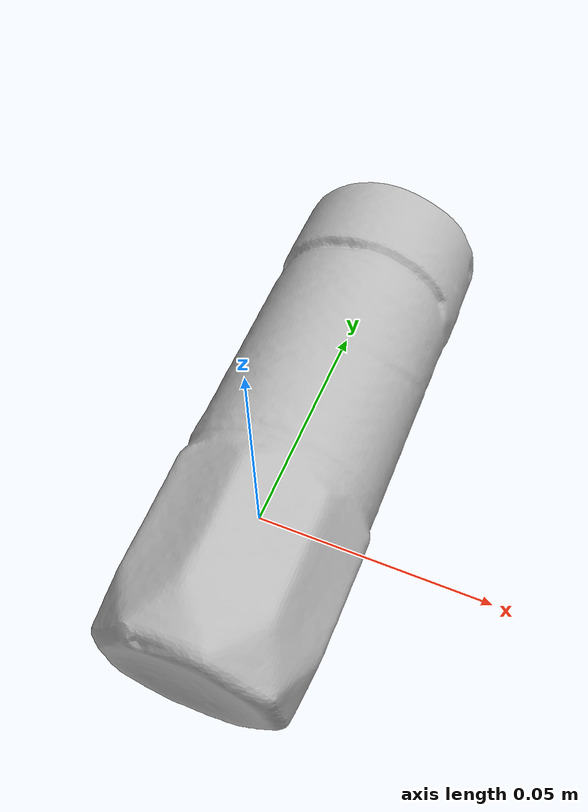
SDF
<?xml version='1.0'?>
<sdf version="1.4">
  <model name="Paprika">
    <static>false</static>
    <link name="link">
      <inertial>
        <pose>0.0009734021670939265 0.021302227389547665 0.0011925726073835456 -1.5083728631470306 -1.1232706042622178 -0.04779492995939545</pose>
        <mass>0.017044001978106245</mass>
        <inertia>
          <ixx>2.1100826482383838e-05</ixx>
          <ixy>-1.4066063491720112e-22</ixy>
          <ixz>-2.6639013874257076e-22</ixz>
          <iyy>2.1081081803215074e-05</iyy>
          <iyz>7.718889568979647e-22</iyz>
          <izz>3.9411171748068346e-06</izz>
        </inertia>
      </inertial>
      <collision name="collision">
        <geometry>
          <mesh>
            <!-- Use a downsampled mesh for collisions -->
            <uri>model:///Paprika/Paprika_250_collision.obj</uri>
	        </mesh>
        </geometry>
        <surface>
      </surface>
      </collision>
      <visual name="visual">
        <geometry>
          <mesh>
            <uri>model:///Paprika/Paprika_25k_tex.obj</uri>
	        </mesh>
        </geometry>
        <material>
          <script>
            <uri>model:///Paprika/Paprika.material</uri>
            <name>Paprika</name>
          </script>
        </material>
      </visual>
    </link>
  </model>
</sdf>
